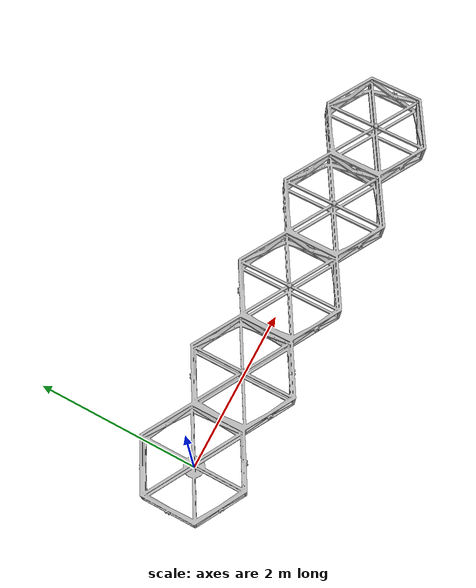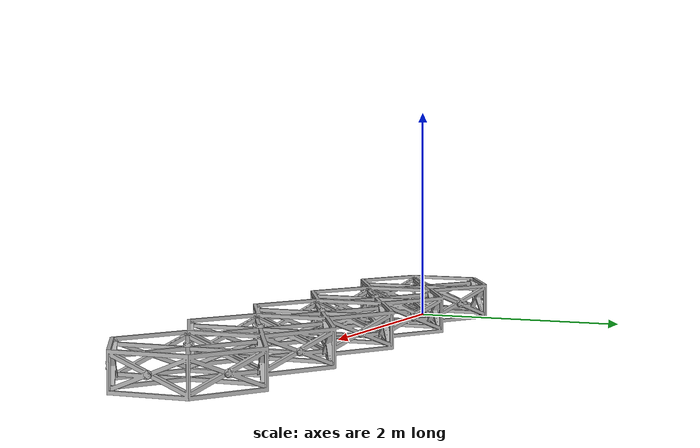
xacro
<?xml version="1.0" ?>
<robot name="srs_5_singlebody" xmlns:xacro="http://www.ros.org/wiki/xacro">

  <xacro:include filename="$(find srs_5_singlebody_description)/urdf/materials.xacro" />
  <xacro:include filename="$(find srs_5_singlebody_description)/urdf/srs_5_singlebody.gazebo" />

  <link name="base_link">
    <inertial>
      <origin xyz="2.3064298460456962 1.031001153235873e-12 0.1633282179308958" rpy="0 0 0"/>
      <mass value="1"/>
      <inertia ixx="0" iyy="0.0" izz="0.0" ixy="0.0" iyz="0.0" ixz="0.0"/>
    </inertial>
    <visual>
      <origin xyz="0 0 0" rpy="0 0 0"/>
      <geometry>
        <mesh filename="package://srs_5_singlebody_description/meshes/base_link.stl" scale="0.001 0.001 0.001"/>
      </geometry>
      <material name="silver"/>
    </visual>
    <collision>
      <origin xyz="0 0 0" rpy="0 0 0"/>
      <geometry>
        <mesh filename="package://srs_5_singlebody_description/meshes/base_link.stl" scale="0.001 0.001 0.001"/>
      </geometry>
    </collision>
  </link>

  <!-- Camera -->
  <link name="camera_link">
  </link>

  <joint name="camera_joint" type="fixed">
    <axis xyz="0 0 0" />
    <origin xyz="3 -7 2" rpy="0 0 1.5708"/>
    <parent link="base_link"/>
    <child link="camera_link"/>
  </joint>

</robot>

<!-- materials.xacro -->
<robot name="srs_5_singlebody" xmlns:xacro="http://www.ros.org/wiki/xacro" >

<material name="silver">
  <color rgba="0.700 0.700 0.700 1.000"/>
</material>

</robot>

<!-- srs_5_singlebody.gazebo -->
<robot name="srs_5_singlebody" xmlns:xacro="http://www.ros.org/wiki/xacro" >

  <xacro:property name="body_color" value="Gazebo/Silver" />

  <gazebo>
    <plugin name="control" filename="libgazebo_ros_control.so"/>
  </gazebo>
  <gazebo reference="base_link">
    <material>${body_color}</material>
    <mu1>0.2</mu1>
    <mu2>0.2</mu2>
    <selfCollide>true</selfCollide>
    <gravity>true</gravity>
  </gazebo>

  <!-- camera -->
  <gazebo reference="camera_link">
    <sensor type="camera" name="camera1">
      <update_rate>30.0</update_rate>
      <camera name="head">
        <horizontal_fov>1.3962634</horizontal_fov>
        <image>
          <width>3840</width>
          <height>2160</height>
          <format>R8G8B8</format>
        </image>
        <clip>
          <near>0.02</near>
          <far>300</far>
        </clip>
        <noise>
          <type>gaussian</type>
          <!-- Noise is sampled independently per pixel on each frame.
               That pixel's noise value is added to each of its color
               channels, which at that point lie in the range [0,1]. -->
          <mean>0.0</mean>
          <stddev>0.007</stddev>
        </noise>
      </camera>
      <plugin name="camera_controller" filename="libgazebo_ros_camera.so">
        <alwaysOn>true</alwaysOn>
        <updateRate>0.0</updateRate>
        <cameraName>srs_5_singlebody/camera1</cameraName>
        <imageTopicName>image_raw</imageTopicName>
        <cameraInfoTopicName>camera_info</cameraInfoTopicName>
        <frameName>camera_link</frameName>
        <hackBaseline>0.07</hackBaseline>
        <distortionK1>0.0</distortionK1>
        <distortionK2>0.0</distortionK2>
        <distortionK3>0.0</distortionK3>
        <distortionT1>0.0</distortionT1>
        <distortionT2>0.0</distortionT2>
      </plugin>
    </sensor>
  </gazebo>

</robot>
